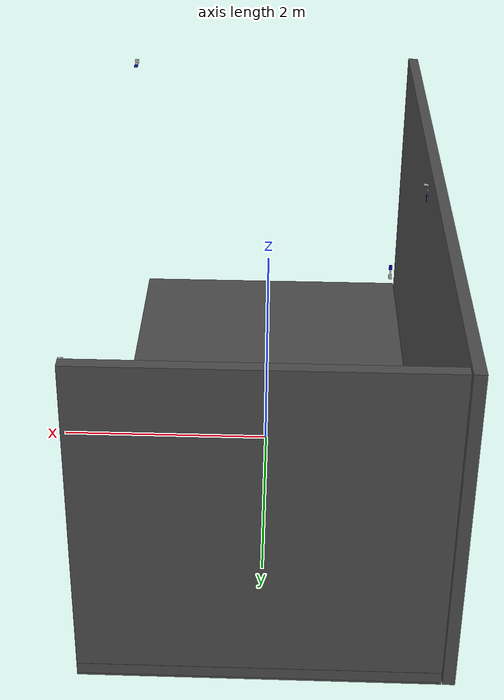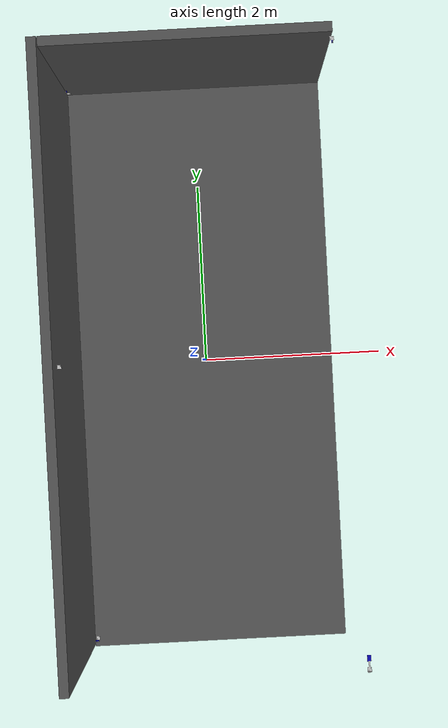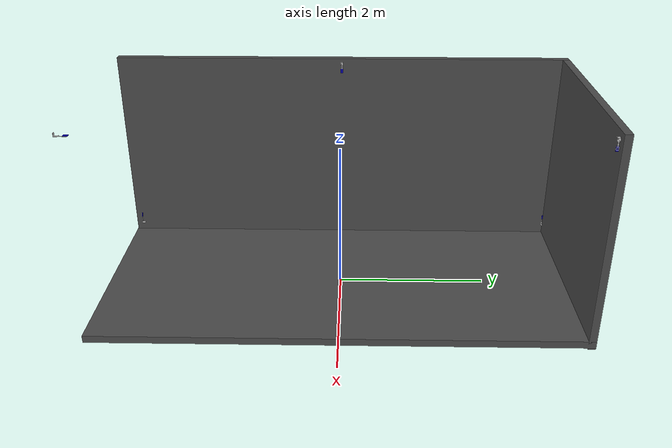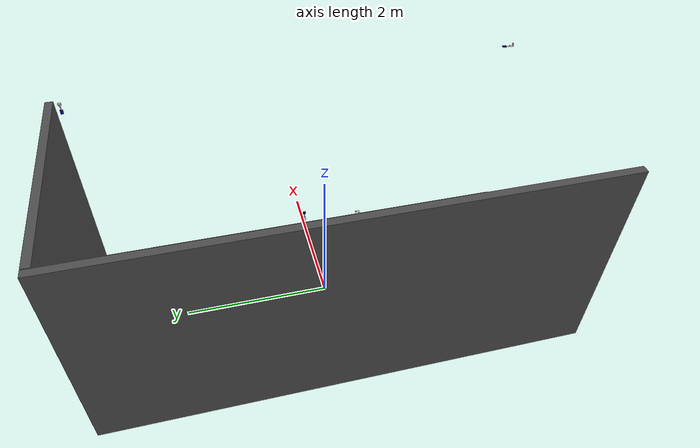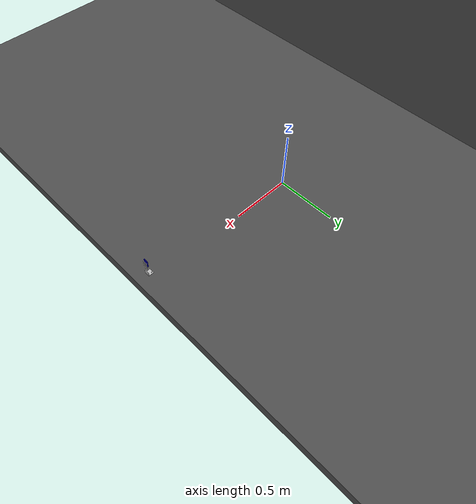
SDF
<?xml version="1.0" ?>
<sdf version="1.5">
  <world name="default">
    <!-- A global light source -->
    <include>
      <uri>model://sun</uri>
    </include>

    <!-- A ground plane -->

    <include>
      <uri>model://mur1</uri>
      <pose>0 0 -0.03 0 0 0</pose>
    </include>

    <!-- Set anchors for the room -->
    <!-- Noeud 0 -->
    <model name="noeud0">
      <pose>-1.4075 -3.145 0.15 0 0 -1.5707</pose>
      <include>
        <uri>model://anchor_stand</uri>
      </include>
    </model>

    <!-- Noeud 1 -->
    <model name="noeud1">
      <pose>-1.4375 3.155 0.15 0 0 3.1415</pose>
      <include>
        <uri>model://anchor_stand</uri>
      </include>
    </model>

    <!-- Noeud 2 -->
    <model name="noeud2">
      <pose>1.3875 0 0.15 0 0 0</pose>
      <include>
        <uri>model://anchor_stand</uri>
      </include>
    </model>

    <!-- Noeud 3 -->
    <model name="noeud3">
      <pose>1.5025 -3.145 2.76 -1.57 1.57 0</pose>
      <include>
        <uri>model://anchor_stand</uri>
      </include>
    </model>

    <!-- Noeud 4 -->
    <model name="noeud4">
      <pose>-1.41 -0.005 2.765 3.1415 0 -3.1415</pose>
      <include>
        <uri>model://anchor_stand</uri>
      </include>
    </model>

    <!-- Noeud 5 -->
    <model name="noeud5">
      <pose>1.4525 3.095 2.765 -3.1415 0 0</pose>
      <include>
        <uri>model://anchor_stand</uri>
      </include>
    </model>

    <!-- Add the crazylfies and the ghost -->
    <include>
      <pose>-1.51 0 1.35 0 1.57 0</pose>
      <uri>model://mur1</uri>
    </include>

    <include>
      <pose>0 3.2 1.35 1.57 0 0</pose>
      <uri>model://mur2</uri>
    </include>

    <physics name='default_physics' default='0' type='ode'>
      <gravity>0 0 -9.8066</gravity>
      <ode>
        <solver>
          <type>quick</type>
          <iters>30</iters>
          <sor>1.3</sor>
          <use_dynamic_moi_rescaling>0</use_dynamic_moi_rescaling>
        </solver>
        <constraints>
          <cfm>0</cfm>
          <erp>0.2</erp>
          <contact_max_correcting_vel>100</contact_max_correcting_vel>
          <contact_surface_layer>0.001</contact_surface_layer>
        </constraints>
      </ode>
      <max_step_size>0.002</max_step_size>
      <real_time_factor>1</real_time_factor>
      <real_time_update_rate>500</real_time_update_rate>
      <magnetic_field>6.0e-6 2.3e-5 -4.2e-5</magnetic_field>
    </physics>
    <gui fullscreen='0'>
      <camera name='user_camera'>
        <pose>1.046088 -5.046417 0.688869 0 -0.008001 1.818801</pose>
      </camera>
    </gui>
  </world>
</sdf>

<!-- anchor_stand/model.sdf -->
<sdf version="1.5">
  <model name="anchor_stand">
    <static>true</static>
    <link name="link">
      <collision name="collision">
        <geometry>
          <box>
            <size>0.02 0.02 0.19</size>
          </box>
        </geometry>
      </collision>
      <visual name="visual">
        <geometry>
          <mesh>
            <uri>model://anchor_stand/meshes/anchor_stand.dae</uri>
          </mesh>
        </geometry>
      </visual>
    </link>
  </model>
</sdf>

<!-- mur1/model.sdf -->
<sdf version="1.5">
  <model name="mur1">
    <static>true</static>
    <link name="link">
      <collision name="collision">
        <geometry>
          <box>
            <size>2.9 6.5 0.1</size>
          </box>
        </geometry>
      </collision>
      <visual name="visual">
        <cast_shadows>false</cast_shadows>
        <geometry>
          <box>
            <size>2.9 6.5 0.1</size>
          </box>
        </geometry>
        <material>
          <script>
            <uri>model://asphalt_plane/materials/scripts</uri>
            <uri>model://asphalt_plane/materials/textures</uri>
            <name>vrc/asphalt</name>
          </script>
        </material>
      </visual>
    </link>
  </model>
</sdf>

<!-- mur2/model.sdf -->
<sdf version="1.5">
  <model name="mur2">
    <static>true</static>
    <link name="link">
      <collision name="collision">
        <geometry>
          <box>
            <size>2.9 2.9 0.1</size>
          </box>
        </geometry>
      </collision>
      <visual name="visual">
        <cast_shadows>false</cast_shadows>
        <geometry>
          <box>
            <size>2.9 2.9 0.1</size>
          </box>
        </geometry>
        <material>
          <script>
            <uri>model://asphalt_plane/materials/scripts</uri>
            <uri>model://asphalt_plane/materials/textures</uri>
            <name>vrc/asphalt</name>
          </script>
        </material>
      </visual>
    </link>
  </model>
</sdf>
